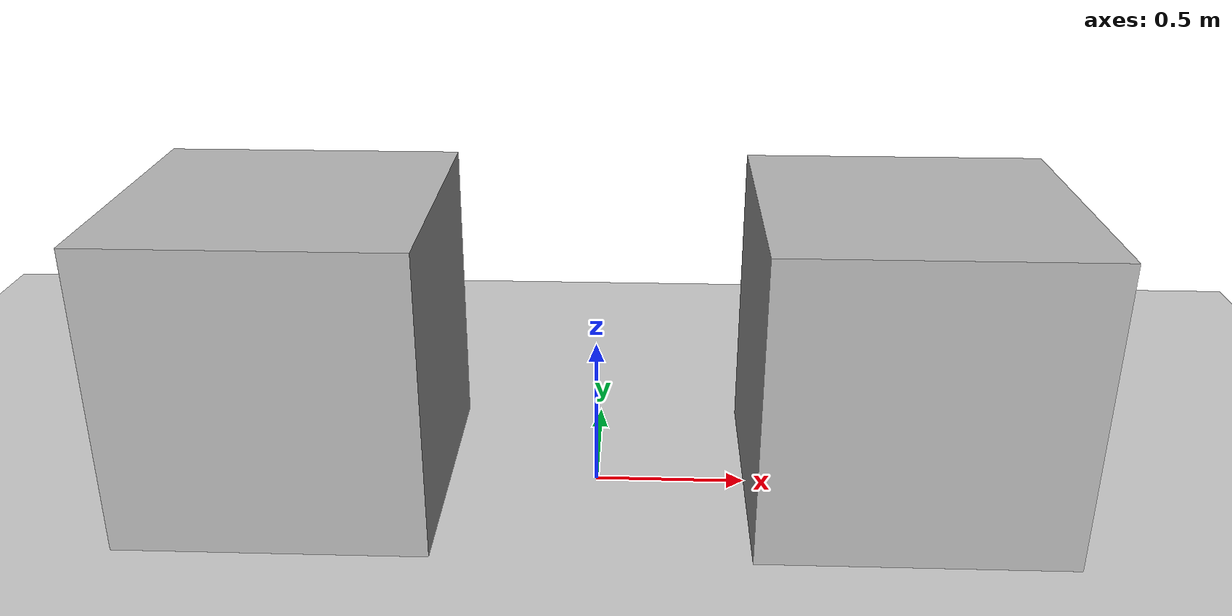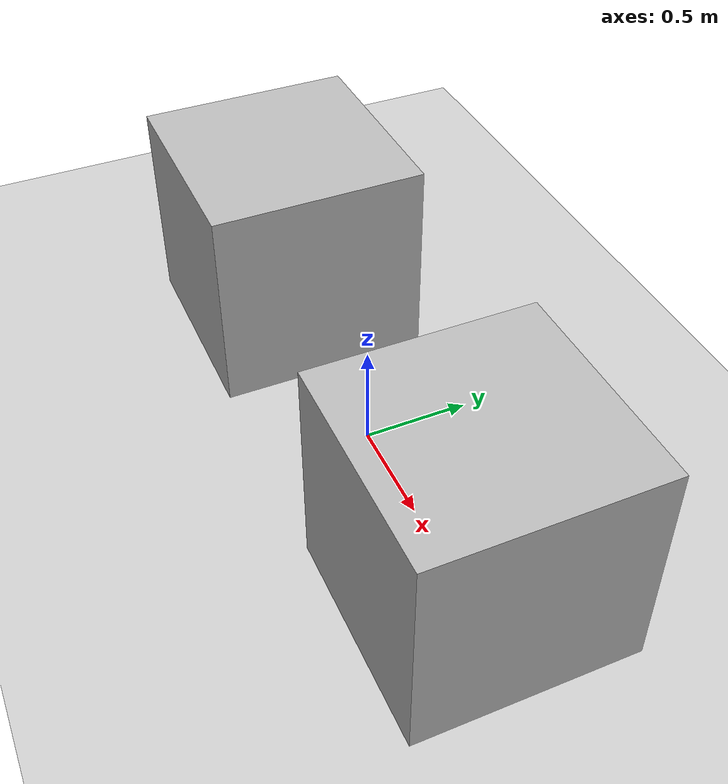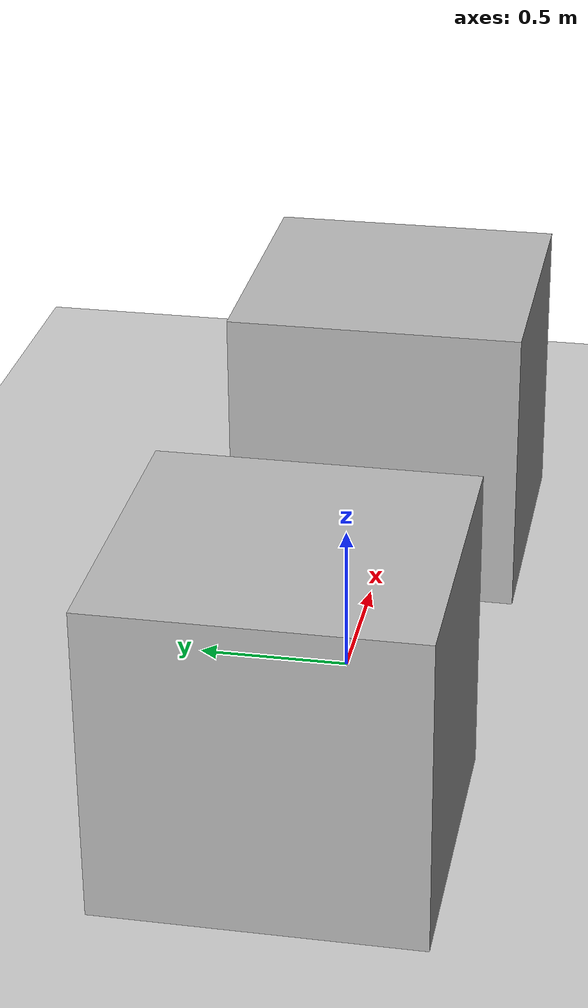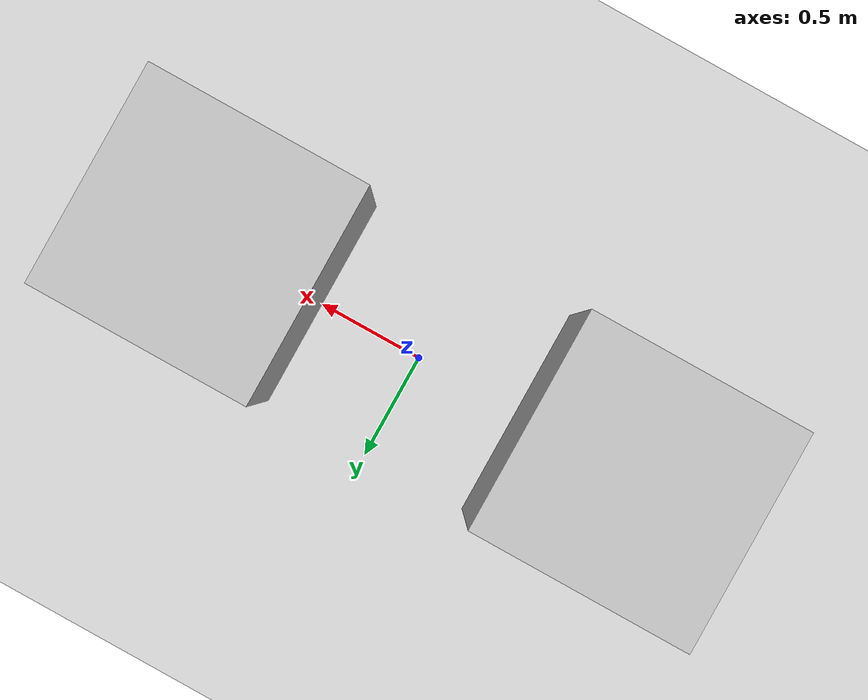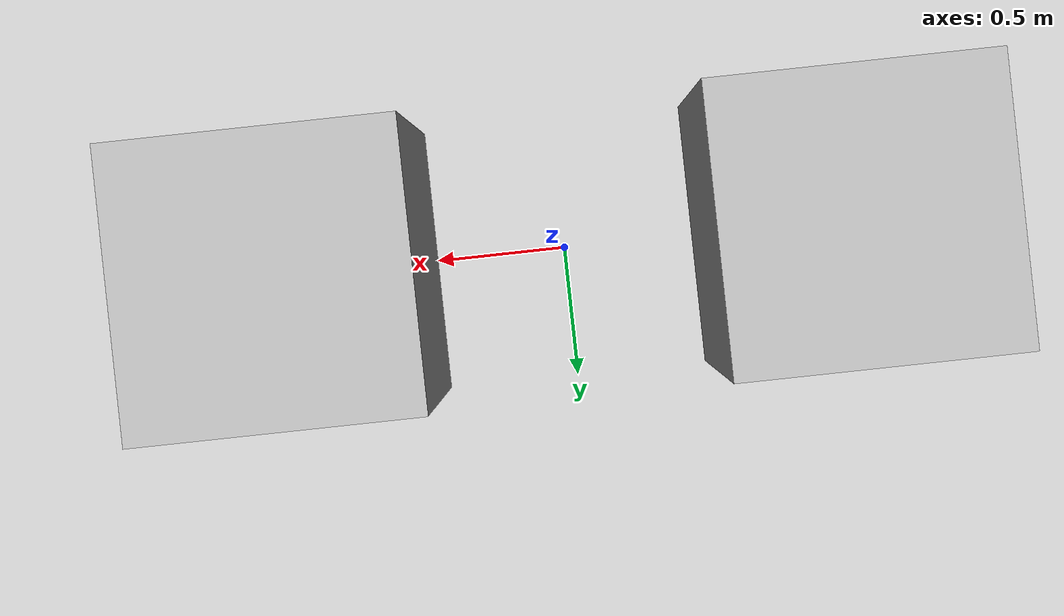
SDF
<?xml version="1.0" encoding="UTF-8"?>
<sdf version="1.6">
    <world name="rope_world">

        <!-- Ground plane -->
        <include>
            <uri>model://ground_plane</uri>
        </include>
        <include>
            <uri>model://asphalt_plane</uri>
        </include>

        <!-- Sun -->
        <include>
            <uri>model://sun</uri>
        </include>

        <!-- Box 1 -->
        <model name="box1">
            <pose>-1 0 .5 0 0 0</pose>
            <static>false</static>
            <link name="link">
                <inertial>
                    <mass>1.0</mass>
                    <inertia>
                        <!-- inertias are tricky to compute -->
                        <!-- http://gazebosim.org/tutorials?tut=inertia&cat=build_robot -->
                        <ixx>0.083</ixx> <!-- for a box: ixx = 0.083 * mass * (y*y + z*z) -->
                        <ixy>0.0</ixy> <!-- for a box: ixy = 0 -->
                        <ixz>0.0</ixz> <!-- for a box: ixz = 0 -->
                        <iyy>0.083</iyy> <!-- for a box: iyy = 0.083 * mass * (x*x + z*z) -->
                        <iyz>0.0</iyz> <!-- for a box: iyz = 0 -->
                        <izz>0.083</izz> <!-- for a box: izz = 0.083 * mass * (x*x + y*y) -->
                    </inertia>
                </inertial>
                <collision name="collision">
                    <geometry>
                        <box>
                            <size>1 1 1</size>
                        </box>
                    </geometry>
                </collision>
                <visual name="visual">
                    <geometry>
                        <box>
                            <size>1 1 1</size>
                        </box>
                    </geometry>
                </visual>
            </link>
        </model>

        <!-- Box 2 -->
        <model name="box2">
            <pose>1 0 0.5 0 0 0</pose>
            <static>false</static>
            <link name="link">
                <inertial>
                    <mass>1.0</mass>
                    <inertia>
                        <!-- inertias are tricky to compute -->
                        <!-- http://gazebosim.org/tutorials?tut=inertia&cat=build_robot -->
                        <ixx>0.083</ixx> <!-- for a box: ixx = 0.083 * mass * (y*y + z*z) -->
                        <ixy>0.0</ixy> <!-- for a box: ixy = 0 -->
                        <ixz>0.0</ixz> <!-- for a box: ixz = 0 -->
                        <iyy>0.083</iyy> <!-- for a box: iyy = 0.083 * mass * (x*x + z*z) -->
                        <iyz>0.0</iyz> <!-- for a box: iyz = 0 -->
                        <izz>0.083</izz> <!-- for a box: izz = 0.083 * mass * (x*x + y*y) -->
                    </inertia>
                </inertial>
                <collision name="collision">
                    <geometry>
                        <box>
                            <size>1 1 1</size>
                        </box>
                    </geometry>
                </collision>
                <visual name="visual">
                    <geometry>
                        <box>
                            <size>1 1 1</size>
                        </box>
                    </geometry>
                </visual>
            </link>
        </model>
        <plugin name="rope_plugin" filename="librope_plugin.so">
            <model1>box1</model1>
            <model2>box2</model2>
            <length>2</length>
        </plugin>
    </world>
</sdf>
